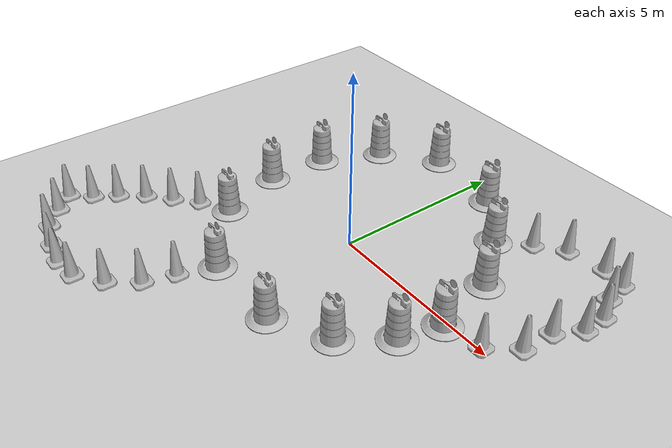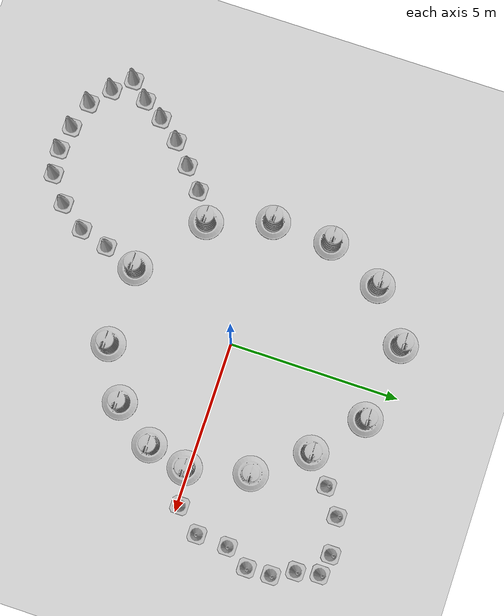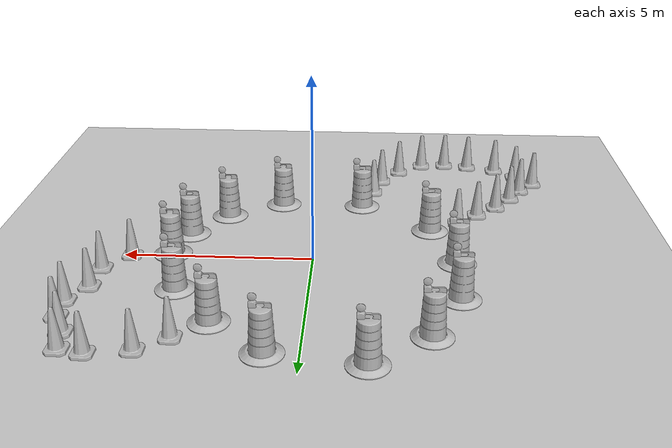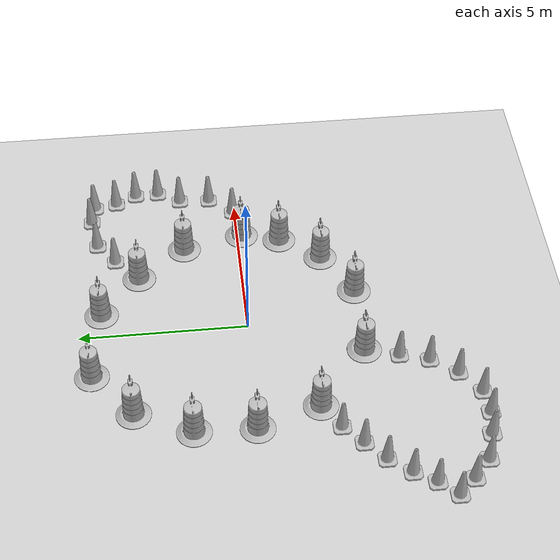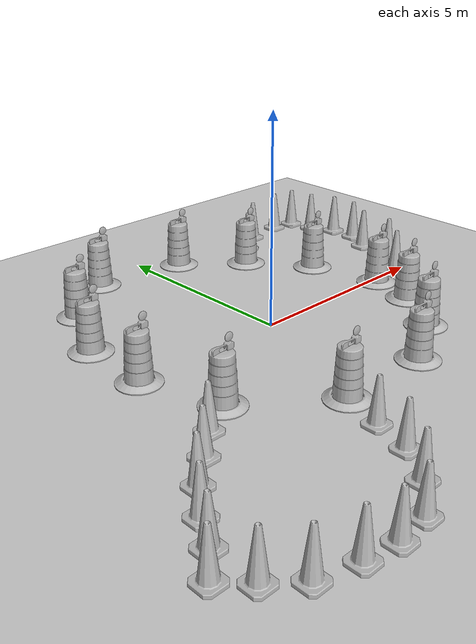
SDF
<sdf version="1.7">
 <world name="default">
  <light name="sun" type="directional">
   <pose>0 0 10 0 -0 0</pose>
   <diffuse>0.8 0.8 0.8 1</diffuse>
   <specular>0.2 0.2 0.2 1</specular>
   <attenuation>
    <range>1000</range>
    <constant>0.9</constant>
    <linear>0.01</linear>
    <quadratic>0.001</quadratic>
   </attenuation>
   <direction>-0.5 0.1 -0.9</direction>
   <spot><inner_angle>0</inner_angle><outer_angle>0</outer_angle><falloff>0</falloff></spot>
  </light>
  <model name="ground_plane">
   <static>1</static>
   <link name="link">
    <collision name="collision">
     <geometry><plane><normal>0 0 1</normal><size>100 100</size></plane></geometry>
     <surface><friction><ode><mu>100</mu><mu2>50</mu2></ode></friction></surface>
    </collision>
    <visual name="visual">
     <cast_shadows>0</cast_shadows>
     <geometry><plane><normal>0 0 1</normal><size>100 100</size></plane></geometry>
     <material>
      <script><uri>file://media/materials/scripts/gazebo.material</uri><name>Gazebo/Grey</name></script>
     </material>
    </visual>
   </link>
  </model>
  <gravity>0 0 -9.8</gravity>
  <magnetic_field>6e-06 2.3e-05 -4.2e-05</magnetic_field>
  <atmosphere type="adiabatic"/>
  <physics type="ode">
   <max_step_size>0.001</max_step_size>
   <real_time_factor>1</real_time_factor>
   <real_time_update_rate>1000</real_time_update_rate>
  </physics>
  <scene><ambient>0.4 0.4 0.4 1</ambient><background>0.7 0.7 0.7 1</background><shadows>1</shadows></scene>
  <audio><device>default</device></audio>
  <spherical_coordinates>
   <surface_model>EARTH_WGS84</surface_model>
   <latitude_deg>0</latitude_deg>
   <longitude_deg>0</longitude_deg>
   <elevation>0</elevation>
   <heading_deg>0</heading_deg>
  </spherical_coordinates>
  <model name="Construction Barrel">
   <link name="link">
    <inertial>
     <pose>0 0 0.4 0 -0 0</pose>
     <mass>500</mass>
     <inertia><ixx>51.2096</ixx><iyy>51.2096</iyy><izz>25</izz><ixy>0</ixy><ixz>0</ixz><iyz>0</iyz></inertia>
    </inertial>
    <collision name="collision">
     <geometry><mesh><uri>model://construction_barrel/meshes/construction_barrel.dae</uri></mesh></geometry>
    </collision>
    <visual name="visual">
     <geometry><mesh><uri>model://construction_barrel/meshes/construction_barrel.dae</uri></mesh></geometry>
    </visual>
   </link>
   <pose>2.21255 3.13112 -0 0 0 -5.1e-05</pose>
  </model>
  <model name="Construction Barrel_0">
   <link name="link">
    <inertial>
     <pose>0 0 0.4 0 -0 0</pose>
     <mass>500</mass>
     <inertia><ixx>51.2096</ixx><iyy>51.2096</iyy><izz>25</izz><ixy>0</ixy><ixz>0</ixz><iyz>0</iyz></inertia>
    </inertial>
    <collision name="collision">
     <geometry><mesh><uri>model://construction_barrel/meshes/construction_barrel.dae</uri></mesh></geometry>
    </collision>
    <visual name="visual">
     <geometry><mesh><uri>model://construction_barrel/meshes/construction_barrel.dae</uri></mesh></geometry>
    </visual>
   </link>
   <pose>3.30458 1.68957 -0 0 0 -5e-05</pose>
  </model>
  <model name="Construction Barrel_1">
   <link name="link">
    <inertial>
     <pose>0 0 0.4 0 -0 0</pose>
     <mass>500</mass>
     <inertia><ixx>51.2096</ixx><iyy>51.2096</iyy><izz>25</izz><ixy>0</ixy><ixz>0</ixz><iyz>0</iyz></inertia>
    </inertial>
    <collision name="collision">
     <geometry><mesh><uri>model://construction_barrel/meshes/construction_barrel.dae</uri></mesh></geometry>
    </collision>
    <visual name="visual">
     <geometry><mesh><uri>model://construction_barrel/meshes/construction_barrel.dae</uri></mesh></geometry>
    </visual>
   </link>
   <pose>3.74179 -0.134378 -0 0 0 -4.9e-05</pose>
  </model>
  <model name="Construction Barrel_2">
   <link name="link">
    <inertial>
     <pose>0 0 0.4 0 -0 0</pose>
     <mass>500</mass>
     <inertia><ixx>51.2096</ixx><iyy>51.2096</iyy><izz>25</izz><ixy>0</ixy><ixz>0</ixz><iyz>0</iyz></inertia>
    </inertial>
    <collision name="collision">
     <geometry><mesh><uri>model://construction_barrel/meshes/construction_barrel.dae</uri></mesh></geometry>
    </collision>
    <visual name="visual">
     <geometry><mesh><uri>model://construction_barrel/meshes/construction_barrel.dae</uri></mesh></geometry>
    </visual>
   </link>
   <pose>0.829711 4.30809 -0 0 0 -4.8e-05</pose>
  </model>
  <model name="Construction Barrel_3">
   <link name="link">
    <inertial>
     <pose>0 0 0.4 0 -0 0</pose>
     <mass>500</mass>
     <inertia><ixx>51.2096</ixx><iyy>51.2096</iyy><izz>25</izz><ixy>0</ixy><ixz>0</ixz><iyz>0</iyz></inertia>
    </inertial>
    <collision name="collision">
     <geometry><mesh><uri>model://construction_barrel/meshes/construction_barrel.dae</uri></mesh></geometry>
    </collision>
    <visual name="visual">
     <geometry><mesh><uri>model://construction_barrel/meshes/construction_barrel.dae</uri></mesh></geometry>
    </visual>
   </link>
   <pose>-1.4929 4.62507 -0 0 0 -4.7e-05</pose>
  </model>
  <model name="Construction Barrel_4">
   <link name="link">
    <inertial>
     <pose>0 0 0.4 0 -0 0</pose>
     <mass>500</mass>
     <inertia><ixx>51.2096</ixx><iyy>51.2096</iyy><izz>25</izz><ixy>0</ixy><ixz>0</ixz><iyz>0</iyz></inertia>
    </inertial>
    <collision name="collision">
     <geometry><mesh><uri>model://construction_barrel/meshes/construction_barrel.dae</uri></mesh></geometry>
    </collision>
    <visual name="visual">
     <geometry><mesh><uri>model://construction_barrel/meshes/construction_barrel.dae</uri></mesh></geometry>
    </visual>
   </link>
   <pose>-2.93612 3.47432 -0 0 0 -4.5e-05</pose>
  </model>
  <model name="Construction Barrel_5">
   <link name="link">
    <inertial>
     <pose>0 0 0.4 0 -0 0</pose>
     <mass>500</mass>
     <inertia><ixx>51.2096</ixx><iyy>51.2096</iyy><izz>25</izz><ixy>0</ixy><ixz>0</ixz><iyz>0</iyz></inertia>
    </inertial>
    <collision name="collision">
     <geometry><mesh><uri>model://construction_barrel/meshes/construction_barrel.dae</uri></mesh></geometry>
    </collision>
    <visual name="visual">
     <geometry><mesh><uri>model://construction_barrel/meshes/construction_barrel.dae</uri></mesh></geometry>
    </visual>
   </link>
   <pose>-3.71274 1.81734 -0 0 0 -4.4e-05</pose>
  </model>
  <model name="Construction Barrel_6">
   <link name="link">
    <inertial>
     <pose>0 0 0.4 0 -0 0</pose>
     <mass>500</mass>
     <inertia><ixx>51.2096</ixx><iyy>51.2096</iyy><izz>25</izz><ixy>0</ixy><ixz>0</ixz><iyz>0</iyz></inertia>
    </inertial>
    <collision name="collision">
     <geometry><mesh><uri>model://construction_barrel/meshes/construction_barrel.dae</uri></mesh></geometry>
    </collision>
    <visual name="visual">
     <geometry><mesh><uri>model://construction_barrel/meshes/construction_barrel.dae</uri></mesh></geometry>
    </visual>
   </link>
   <pose>-3.75963 0.042992 -0 0 0 -4.3e-05</pose>
  </model>
  <model name="Construction Barrel_7">
   <link name="link">
    <inertial>
     <pose>0 0 0.4 0 -0 0</pose>
     <mass>500</mass>
     <inertia><ixx>51.2096</ixx><iyy>51.2096</iyy><izz>25</izz><ixy>0</ixy><ixz>0</ixz><iyz>0</iyz></inertia>
    </inertial>
    <collision name="collision">
     <geometry><mesh><uri>model://construction_barrel/meshes/construction_barrel.dae</uri></mesh></geometry>
    </collision>
    <visual name="visual">
     <geometry><mesh><uri>model://construction_barrel/meshes/construction_barrel.dae</uri></mesh></geometry>
    </visual>
   </link>
   <pose>-3.14555 -1.79971 -0 0 0 -4.2e-05</pose>
  </model>
  <model name="Construction Barrel_8">
   <link name="link">
    <inertial>
     <pose>0 0 0.4 0 -0 0</pose>
     <mass>500</mass>
     <inertia><ixx>51.2096</ixx><iyy>51.2096</iyy><izz>25</izz><ixy>0</ixy><ixz>0</ixz><iyz>0</iyz></inertia>
    </inertial>
    <collision name="collision">
     <geometry><mesh><uri>model://construction_barrel/meshes/construction_barrel.dae</uri></mesh></geometry>
    </collision>
    <visual name="visual">
     <geometry><mesh><uri>model://construction_barrel/meshes/construction_barrel.dae</uri></mesh></geometry>
    </visual>
   </link>
   <pose>-1.22646 -3.31309 -0 0 0 -4e-05</pose>
  </model>
  <model name="Construction Barrel_9">
   <link name="link">
    <inertial>
     <pose>0 0 0.4 0 -0 0</pose>
     <mass>500</mass>
     <inertia><ixx>51.2096</ixx><iyy>51.2096</iyy><izz>25</izz><ixy>0</ixy><ixz>0</ixz><iyz>0</iyz></inertia>
    </inertial>
    <collision name="collision">
     <geometry><mesh><uri>model://construction_barrel/meshes/construction_barrel.dae</uri></mesh></geometry>
    </collision>
    <visual name="visual">
     <geometry><mesh><uri>model://construction_barrel/meshes/construction_barrel.dae</uri></mesh></geometry>
    </visual>
   </link>
   <pose>1.08963 -3.32866 -0 0 0 -3.9e-05</pose>
  </model>
  <model name="Construction Barrel_10">
   <link name="link">
    <inertial>
     <pose>0 0 0.4 0 -0 0</pose>
     <mass>500</mass>
     <inertia><ixx>51.2096</ixx><iyy>51.2096</iyy><izz>25</izz><ixy>0</ixy><ixz>0</ixz><iyz>0</iyz></inertia>
    </inertial>
    <collision name="collision">
     <geometry><mesh><uri>model://construction_barrel/meshes/construction_barrel.dae</uri></mesh></geometry>
    </collision>
    <visual name="visual">
     <geometry><mesh><uri>model://construction_barrel/meshes/construction_barrel.dae</uri></mesh></geometry>
    </visual>
   </link>
   <pose>2.57157 -2.47867 -0 0 0 -3.8e-05</pose>
  </model>
  <model name="Construction Barrel_11">
   <link name="link">
    <inertial>
     <pose>0 0 0.4 0 -0 0</pose>
     <mass>500</mass>
     <inertia><ixx>51.2096</ixx><iyy>51.2096</iyy><izz>25</izz><ixy>0</ixy><ixz>0</ixz><iyz>0</iyz></inertia>
    </inertial>
    <collision name="collision">
     <geometry><mesh><uri>model://construction_barrel/meshes/construction_barrel.dae</uri></mesh></geometry>
    </collision>
    <visual name="visual">
     <geometry><mesh><uri>model://construction_barrel/meshes/construction_barrel.dae</uri></mesh></geometry>
    </visual>
   </link>
   <pose>3.44557 -1.28855 -0 0 0 -3.7e-05</pose>
  </model>
  <model name="Construction Cone">
   <link name="link">
    <collision name="collision">
     <geometry>
      <mesh><scale>10 10 10</scale><uri>model://construction_cone/meshes/construction_cone.dae</uri></mesh>
     </geometry>
    </collision>
    <visual name="visual">
     <geometry>
      <mesh><scale>10 10 10</scale><uri>model://construction_cone/meshes/construction_cone.dae</uri></mesh>
     </geometry>
    </visual>
    <inertial>
     <inertia><ixx>1</ixx><ixy>0</ixy><ixz>0</ixz><iyy>1</iyy><iyz>0</iyz><izz>1</izz></inertia>
     <mass>1</mass>
    </inertial>
   </link>
   <pose>5.49549 3.73786 -0 1e-06 -0 0</pose>
  </model>
  <model name="Construction Cone_0">
   <link name="link">
    <collision name="collision">
     <geometry>
      <mesh><scale>10 10 10</scale><uri>model://construction_cone/meshes/construction_cone.dae</uri></mesh>
     </geometry>
    </collision>
    <visual name="visual">
     <geometry>
      <mesh><scale>10 10 10</scale><uri>model://construction_cone/meshes/construction_cone.dae</uri></mesh>
     </geometry>
    </visual>
    <inertial>
     <inertia><ixx>1</ixx><ixy>0</ixy><ixz>0</ixz><iyy>1</iyy><iyz>0</iyz><izz>1</izz></inertia>
     <mass>1</mass>
    </inertial>
   </link>
   <pose>5.83943 2.39801 -0 0 -0 0</pose>
  </model>
  <model name="Construction Cone_1">
   <link name="link">
    <collision name="collision">
     <geometry>
      <mesh><scale>10 10 10</scale><uri>model://construction_cone/meshes/construction_cone.dae</uri></mesh>
     </geometry>
    </collision>
    <visual name="visual">
     <geometry>
      <mesh><scale>10 10 10</scale><uri>model://construction_cone/meshes/construction_cone.dae</uri></mesh>
     </geometry>
    </visual>
    <inertial>
     <inertia><ixx>1</ixx><ixy>0</ixy><ixz>0</ixz><iyy>1</iyy><iyz>0</iyz><izz>1</izz></inertia>
     <mass>1</mass>
    </inertial>
   </link>
   <pose>4.74636 4.53039 -0 1e-06 -0 0</pose>
  </model>
  <model name="Construction Cone_2">
   <link name="link">
    <collision name="collision">
     <geometry>
      <mesh><scale>10 10 10</scale><uri>model://construction_cone/meshes/construction_cone.dae</uri></mesh>
     </geometry>
    </collision>
    <visual name="visual">
     <geometry>
      <mesh><scale>10 10 10</scale><uri>model://construction_cone/meshes/construction_cone.dae</uri></mesh>
     </geometry>
    </visual>
    <inertial>
     <inertia><ixx>1</ixx><ixy>0</ixy><ixz>0</ixz><iyy>1</iyy><iyz>0</iyz><izz>1</izz></inertia>
     <mass>1</mass>
    </inertial>
   </link>
   <pose>3.68593 4.36742 -0 0 -1e-06 0</pose>
  </model>
  <model name="Construction Cone_3">
   <link name="link">
    <collision name="collision">
     <geometry>
      <mesh><scale>10 10 10</scale><uri>model://construction_cone/meshes/construction_cone.dae</uri></mesh>
     </geometry>
    </collision>
    <visual name="visual">
     <geometry>
      <mesh><scale>10 10 10</scale><uri>model://construction_cone/meshes/construction_cone.dae</uri></mesh>
     </geometry>
    </visual>
    <inertial>
     <inertia><ixx>1</ixx><ixy>0</ixy><ixz>0</ixz><iyy>1</iyy><iyz>0</iyz><izz>1</izz></inertia>
     <mass>1</mass>
    </inertial>
   </link>
   <pose>2.96644 3.8334 -0 0 -0 0</pose>
  </model>
  <model name="Construction Cone_4">
   <link name="link">
    <collision name="collision">
     <geometry>
      <mesh><scale>10 10 10</scale><uri>model://construction_cone/meshes/construction_cone.dae</uri></mesh>
     </geometry>
    </collision>
    <visual name="visual">
     <geometry>
      <mesh><scale>10 10 10</scale><uri>model://construction_cone/meshes/construction_cone.dae</uri></mesh>
     </geometry>
    </visual>
    <inertial>
     <inertia><ixx>1</ixx><ixy>0</ixy><ixz>0</ixz><iyy>1</iyy><iyz>0</iyz><izz>1</izz></inertia>
     <mass>1</mass>
    </inertial>
   </link>
   <pose>5.44506 1.70953 -0 0 -0 0</pose>
  </model>
  <model name="Construction Cone_5">
   <link name="link">
    <collision name="collision">
     <geometry>
      <mesh><scale>10 10 10</scale><uri>model://construction_cone/meshes/construction_cone.dae</uri></mesh>
     </geometry>
    </collision>
    <visual name="visual">
     <geometry>
      <mesh><scale>10 10 10</scale><uri>model://construction_cone/meshes/construction_cone.dae</uri></mesh>
     </geometry>
    </visual>
    <inertial>
     <inertia><ixx>1</ixx><ixy>0</ixy><ixz>0</ixz><iyy>1</iyy><iyz>0</iyz><izz>1</izz></inertia>
     <mass>1</mass>
    </inertial>
   </link>
   <pose>5.39548 0.784788 -0 0 -0 0</pose>
  </model>
  <model name="Construction Cone_6">
   <link name="link">
    <collision name="collision">
     <geometry>
      <mesh><scale>10 10 10</scale><uri>model://construction_cone/meshes/construction_cone.dae</uri></mesh>
     </geometry>
    </collision>
    <visual name="visual">
     <geometry>
      <mesh><scale>10 10 10</scale><uri>model://construction_cone/meshes/construction_cone.dae</uri></mesh>
     </geometry>
    </visual>
    <inertial>
     <inertia><ixx>1</ixx><ixy>0</ixy><ixz>0</ixz><iyy>1</iyy><iyz>0</iyz><izz>1</izz></inertia>
     <mass>1</mass>
    </inertial>
   </link>
   <pose>4.78542 0.067791 -1e-05 0 -0 0</pose>
  </model>
  <model name="Construction Cone_7">
   <link name="link">
    <collision name="collision">
     <geometry>
      <mesh><scale>10 10 10</scale><uri>model://construction_cone/meshes/construction_cone.dae</uri></mesh>
     </geometry>
    </collision>
    <visual name="visual">
     <geometry>
      <mesh><scale>10 10 10</scale><uri>model://construction_cone/meshes/construction_cone.dae</uri></mesh>
     </geometry>
    </visual>
    <inertial>
     <inertia><ixx>1</ixx><ixy>0</ixy><ixz>0</ixz><iyy>1</iyy><iyz>0</iyz><izz>1</izz></inertia>
     <mass>1</mass>
    </inertial>
   </link>
   <pose>-1.56347 -4.2937 -0 0 -1e-06 0</pose>
  </model>
  <model name="Construction Cone_8">
   <link name="link">
    <collision name="collision">
     <geometry>
      <mesh><scale>10 10 10</scale><uri>model://construction_cone/meshes/construction_cone.dae</uri></mesh>
     </geometry>
    </collision>
    <visual name="visual">
     <geometry>
      <mesh><scale>10 10 10</scale><uri>model://construction_cone/meshes/construction_cone.dae</uri></mesh>
     </geometry>
    </visual>
    <inertial>
     <inertia><ixx>1</ixx><ixy>0</ixy><ixz>0</ixz><iyy>1</iyy><iyz>0</iyz><izz>1</izz></inertia>
     <mass>1</mass>
    </inertial>
   </link>
   <pose>-1.81544 -5.13913 -0 0 -0 0</pose>
  </model>
  <model name="Construction Cone_9">
   <link name="link">
    <collision name="collision">
     <geometry>
      <mesh><scale>10 10 10</scale><uri>model://construction_cone/meshes/construction_cone.dae</uri></mesh>
     </geometry>
    </collision>
    <visual name="visual">
     <geometry>
      <mesh><scale>10 10 10</scale><uri>model://construction_cone/meshes/construction_cone.dae</uri></mesh>
     </geometry>
    </visual>
    <inertial>
     <inertia><ixx>1</ixx><ixy>0</ixy><ixz>0</ixz><iyy>1</iyy><iyz>0</iyz><izz>1</izz></inertia>
     <mass>1</mass>
    </inertial>
   </link>
   <pose>-2.36458 -5.88813 -8e-06 1e-06 -0 0</pose>
  </model>
  <model name="Construction Cone_10">
   <link name="link">
    <collision name="collision">
     <geometry>
      <mesh><scale>10 10 10</scale><uri>model://construction_cone/meshes/construction_cone.dae</uri></mesh>
     </geometry>
    </collision>
    <visual name="visual">
     <geometry>
      <mesh><scale>10 10 10</scale><uri>model://construction_cone/meshes/construction_cone.dae</uri></mesh>
     </geometry>
    </visual>
    <inertial>
     <inertia><ixx>1</ixx><ixy>0</ixy><ixz>0</ixz><iyy>1</iyy><iyz>0</iyz><izz>1</izz></inertia>
     <mass>1</mass>
    </inertial>
   </link>
   <pose>-3.10228 -6.44951 -0 0 -1e-06 0</pose>
  </model>
  <model name="Construction Cone_11">
   <link name="link">
    <collision name="collision">
     <geometry>
      <mesh><scale>10 10 10</scale><uri>model://construction_cone/meshes/construction_cone.dae</uri></mesh>
     </geometry>
    </collision>
    <visual name="visual">
     <geometry>
      <mesh><scale>10 10 10</scale><uri>model://construction_cone/meshes/construction_cone.dae</uri></mesh>
     </geometry>
    </visual>
    <inertial>
     <inertia><ixx>1</ixx><ixy>0</ixy><ixz>0</ixz><iyy>1</iyy><iyz>0</iyz><izz>1</izz></inertia>
     <mass>1</mass>
    </inertial>
   </link>
   <pose>-3.84867 -6.52764 -1e-05 -1e-06 0 0</pose>
  </model>
  <model name="Construction Cone_12">
   <link name="link">
    <collision name="collision">
     <geometry>
      <mesh><scale>10 10 10</scale><uri>model://construction_cone/meshes/construction_cone.dae</uri></mesh>
     </geometry>
    </collision>
    <visual name="visual">
     <geometry>
      <mesh><scale>10 10 10</scale><uri>model://construction_cone/meshes/construction_cone.dae</uri></mesh>
     </geometry>
    </visual>
    <inertial>
     <inertia><ixx>1</ixx><ixy>0</ixy><ixz>0</ixz><iyy>1</iyy><iyz>0</iyz><izz>1</izz></inertia>
     <mass>1</mass>
    </inertial>
   </link>
   <pose>-4.58504 -6.40836 -0 0 -0 0</pose>
  </model>
  <model name="Construction Cone_13">
   <link name="link">
    <collision name="collision">
     <geometry>
      <mesh><scale>10 10 10</scale><uri>model://construction_cone/meshes/construction_cone.dae</uri></mesh>
     </geometry>
    </collision>
    <visual name="visual">
     <geometry>
      <mesh><scale>10 10 10</scale><uri>model://construction_cone/meshes/construction_cone.dae</uri></mesh>
     </geometry>
    </visual>
    <inertial>
     <inertia><ixx>1</ixx><ixy>0</ixy><ixz>0</ixz><iyy>1</iyy><iyz>0</iyz><izz>1</izz></inertia>
     <mass>1</mass>
    </inertial>
   </link>
   <pose>-3.9462 -2.29598 -0 0 -0 0</pose>
  </model>
  <model name="Construction Cone_14">
   <link name="link">
    <collision name="collision">
     <geometry>
      <mesh><scale>10 10 10</scale><uri>model://construction_cone/meshes/construction_cone.dae</uri></mesh>
     </geometry>
    </collision>
    <visual name="visual">
     <geometry>
      <mesh><scale>10 10 10</scale><uri>model://construction_cone/meshes/construction_cone.dae</uri></mesh>
     </geometry>
    </visual>
    <inertial>
     <inertia><ixx>1</ixx><ixy>0</ixy><ixz>0</ixz><iyy>1</iyy><iyz>0</iyz><izz>1</izz></inertia>
     <mass>1</mass>
    </inertial>
   </link>
   <pose>-4.54767 -2.83502 -0 1e-06 -0 0</pose>
  </model>
  <model name="Construction Cone_15">
   <link name="link">
    <collision name="collision">
     <geometry>
      <mesh><scale>10 10 10</scale><uri>model://construction_cone/meshes/construction_cone.dae</uri></mesh>
     </geometry>
    </collision>
    <visual name="visual">
     <geometry>
      <mesh><scale>10 10 10</scale><uri>model://construction_cone/meshes/construction_cone.dae</uri></mesh>
     </geometry>
    </visual>
    <inertial>
     <inertia><ixx>1</ixx><ixy>0</ixy><ixz>0</ixz><iyy>1</iyy><iyz>0</iyz><izz>1</izz></inertia>
     <mass>1</mass>
    </inertial>
   </link>
   <pose>-5.14941 -3.3783 -0 0 -0 0</pose>
  </model>
  <model name="Construction Cone_16">
   <link name="link">
    <collision name="collision">
     <geometry>
      <mesh><scale>10 10 10</scale><uri>model://construction_cone/meshes/construction_cone.dae</uri></mesh>
     </geometry>
    </collision>
    <visual name="visual">
     <geometry>
      <mesh><scale>10 10 10</scale><uri>model://construction_cone/meshes/construction_cone.dae</uri></mesh>
     </geometry>
    </visual>
    <inertial>
     <inertia><ixx>1</ixx><ixy>0</ixy><ixz>0</ixz><iyy>1</iyy><iyz>0</iyz><izz>1</izz></inertia>
     <mass>1</mass>
    </inertial>
   </link>
   <pose>-5.6424 -4.01105 -0 0 -0 0</pose>
  </model>
  <model name="Construction Cone_17">
   <link name="link">
    <collision name="collision">
     <geometry>
      <mesh><scale>10 10 10</scale><uri>model://construction_cone/meshes/construction_cone.dae</uri></mesh>
     </geometry>
    </collision>
    <visual name="visual">
     <geometry>
      <mesh><scale>10 10 10</scale><uri>model://construction_cone/meshes/construction_cone.dae</uri></mesh>
     </geometry>
    </visual>
    <inertial>
     <inertia><ixx>1</ixx><ixy>0</ixy><ixz>0</ixz><iyy>1</iyy><iyz>0</iyz><izz>1</izz></inertia>
     <mass>1</mass>
    </inertial>
   </link>
   <pose>-6.01959 -4.61967 -0 0 -1e-06 0</pose>
  </model>
  <model name="Construction Cone_18">
   <link name="link">
    <collision name="collision">
     <geometry>
      <mesh><scale>10 10 10</scale><uri>model://construction_cone/meshes/construction_cone.dae</uri></mesh>
     </geometry>
    </collision>
    <visual name="visual">
     <geometry>
      <mesh><scale>10 10 10</scale><uri>model://construction_cone/meshes/construction_cone.dae</uri></mesh>
     </geometry>
    </visual>
    <inertial>
     <inertia><ixx>1</ixx><ixy>0</ixy><ixz>0</ixz><iyy>1</iyy><iyz>0</iyz><izz>1</izz></inertia>
     <mass>1</mass>
    </inertial>
   </link>
   <pose>-6.48422 -5.14313 0 -1e-06 0 0</pose>
  </model>
  <model name="Construction Cone_19">
   <link name="link">
    <collision name="collision">
     <geometry>
      <mesh><scale>10 10 10</scale><uri>model://construction_cone/meshes/construction_cone.dae</uri></mesh>
     </geometry>
    </collision>
    <visual name="visual">
     <geometry>
      <mesh><scale>10 10 10</scale><uri>model://construction_cone/meshes/construction_cone.dae</uri></mesh>
     </geometry>
    </visual>
    <inertial>
     <inertia><ixx>1</ixx><ixy>0</ixy><ixz>0</ixz><iyy>1</iyy><iyz>0</iyz><izz>1</izz></inertia>
     <mass>1</mass>
    </inertial>
   </link>
   <pose>-6.00632 -5.65397 -1e-06 2e-06 2e-06 0</pose>
  </model>
  <model name="Construction Cone_20">
   <link name="link">
    <collision name="collision">
     <geometry>
      <mesh><scale>10 10 10</scale><uri>model://construction_cone/meshes/construction_cone.dae</uri></mesh>
     </geometry>
    </collision>
    <visual name="visual">
     <geometry>
      <mesh><scale>10 10 10</scale><uri>model://construction_cone/meshes/construction_cone.dae</uri></mesh>
     </geometry>
    </visual>
    <inertial>
     <inertia><ixx>1</ixx><ixy>0</ixy><ixz>0</ixz><iyy>1</iyy><iyz>0</iyz><izz>1</izz></inertia>
     <mass>1</mass>
    </inertial>
   </link>
   <pose>-5.42145 -6.15533 0 -0 -0 -0</pose>
  </model>
  <model name="Construction Cone_21">
   <link name="link">
    <collision name="collision">
     <geometry>
      <mesh><scale>10 10 10</scale><uri>model://construction_cone/meshes/construction_cone.dae</uri></mesh>
     </geometry>
    </collision>
    <visual name="visual">
     <geometry>
      <mesh><scale>10 10 10</scale><uri>model://construction_cone/meshes/construction_cone.dae</uri></mesh>
     </geometry>
    </visual>
    <inertial>
     <inertia><ixx>1</ixx><ixy>0</ixy><ixz>0</ixz><iyy>1</iyy><iyz>0</iyz><izz>1</izz></inertia>
     <mass>1</mass>
    </inertial>
   </link>
   <pose>5.81472 3.10636 -0 0 -0 0</pose>
  </model>
  <model name="Construction Cone_22">
   <link name="link">
    <collision name="collision">
     <geometry>
      <mesh><scale>10 10 10</scale><uri>model://construction_cone/meshes/construction_cone.dae</uri></mesh>
     </geometry>
    </collision>
    <visual name="visual">
     <geometry>
      <mesh><scale>10 10 10</scale><uri>model://construction_cone/meshes/construction_cone.dae</uri></mesh>
     </geometry>
    </visual>
    <inertial>
     <inertia><ixx>1</ixx><ixy>0</ixy><ixz>0</ixz><iyy>1</iyy><iyz>0</iyz><izz>1</izz></inertia>
     <mass>1</mass>
    </inertial>
   </link>
   <pose>5.36094 4.40994 -0 0 -1e-06 0</pose>
  </model>
 </world>
</sdf>
